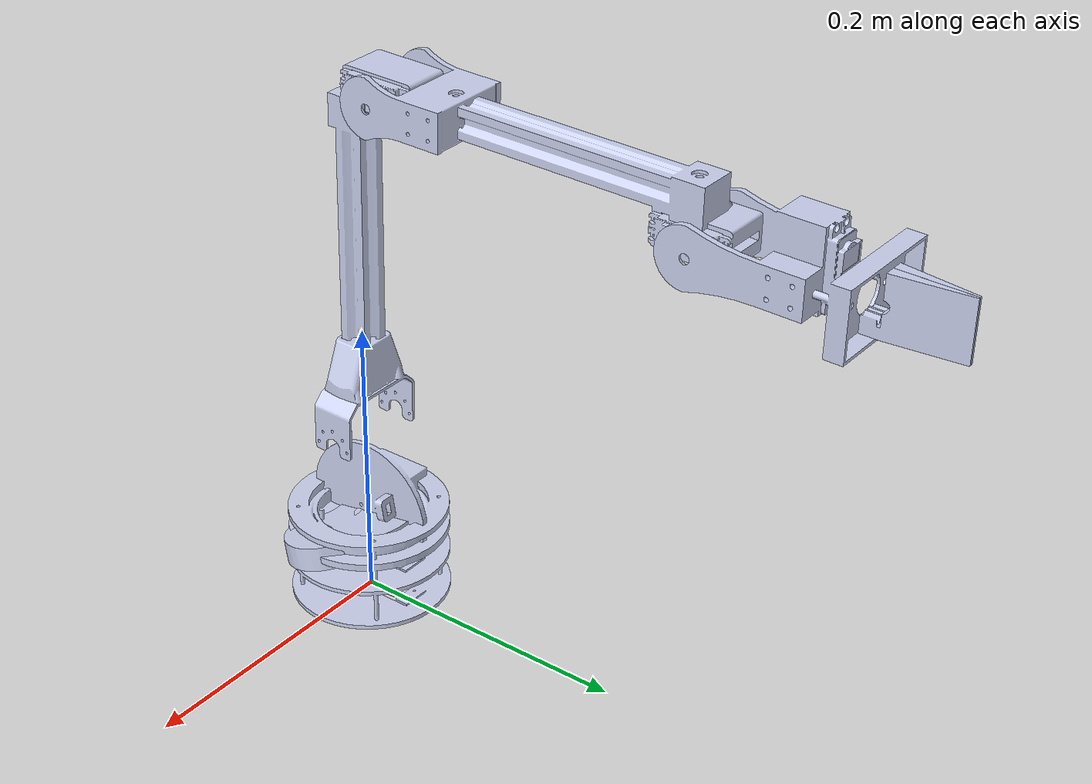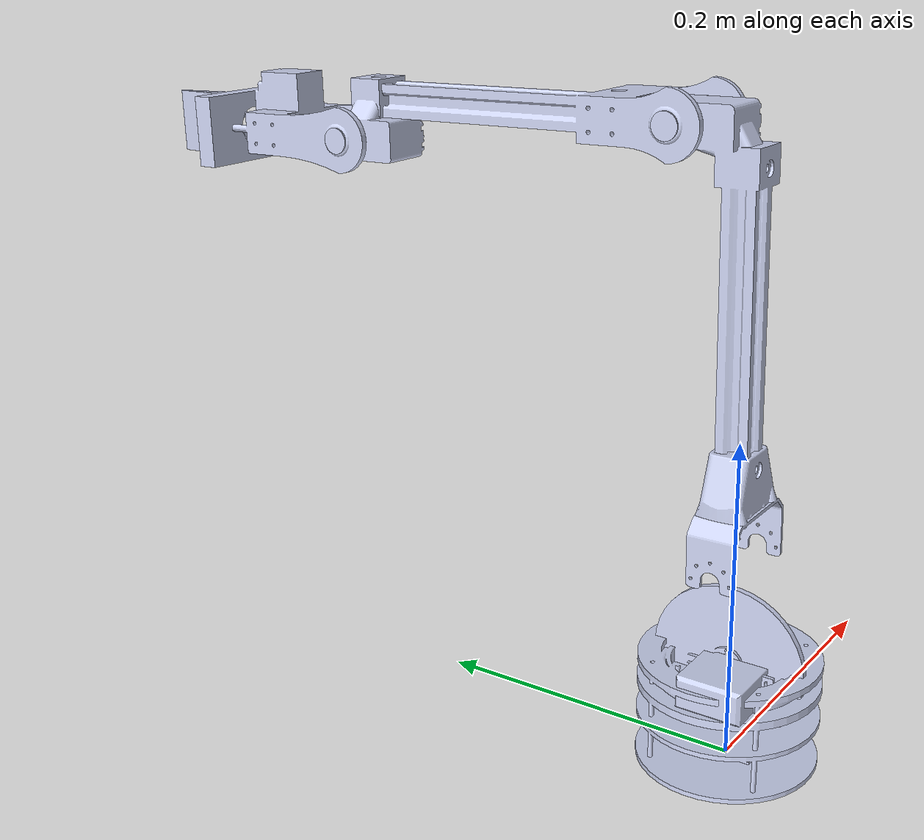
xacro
<?xml version="1.0"?>
<robot xmlns:xacro="http://www.ros.org/wiki/xacro" name="robot_arm_description">
    <xacro:arg name="initial_positions_file" default="initial_positions.yaml" />

    <!-- Import robot_arm_description urdf file -->
    <xacro:include filename="$(find robot_arm_description)/urdf/robot_arm.urdf.xacro" />

    <!-- Import control_xacro -->
    <xacro:include filename="robot_arm_description.ros2_control.xacro" />

    <xacro:robot_arm_description_ros2_control name="FakeSystem" initial_positions_file="$(arg initial_positions_file)"/>

</robot>

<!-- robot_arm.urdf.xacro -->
<robot name="robot_arm_description" xmlns:xacro="http://www.ros.org/wiki/xacro">

    <xacro:arg name="is_ignition" default="True"/>

    <!-- Include the Gazebo plugin configuration -->
    <xacro:include filename="$(find robot_arm_description)/urdf/robot_arm_gazebo.xacro" />
    <xacro:include filename="$(find robot_arm_description)/urdf/robot_arm_control.xacro" />

   <!-- Links -->
  <link name="world"/>

   <!-- Joints -->
  <joint name="virtual_joint" type="fixed">
    <parent link="world"/>
    <child link="base_link"/>
    <origin xyz="0 0 0" rpy="0 0 0"/>
  </joint>

  <!-- Base Link without Inertia -->
  <link name="base_link">
    <inertial>
      <origin xyz="0 0 0" rpy="0 0 0"/>
      <mass value="1.0"/>
      <inertia ixx="0.01" ixy="0.0" ixz="0.0" iyy="0.01" iyz="0.0" izz="0.01"/>
    </inertial>
    <visual>
      <origin xyz="0 0 0" rpy="0 0 0"/>
      <geometry>
        <mesh filename="package://robot_arm_description/meshes/base_link.STL"/>
      </geometry>
      <material name="">
        <color rgba="0.79216 0.81961 0.93333 1"/>
      </material>
    </visual>
    <collision>
      <origin xyz="0 0 0" rpy="0 0 0"/>
      <geometry>
        <mesh filename="package://robot_arm_description/meshes/base_link.STL"/>
      </geometry>
    </collision>
  </link>

  <!-- Joint 1 -->
  <joint name="joint_1" type="revolute">
    <origin xyz="0 0 0.063" rpy="1.5708 0 1.5708"/>
    <parent link="base_link"/>
    <child link="link_1"/>
    <axis xyz="0 1 0"/>
    <limit lower="-1.57" upper="1.57" effort="1.35" velocity="20.12"/>
  </joint>

  <!-- Link 1 -->
  <link name="link_1">
    <inertial>
      <origin xyz="2.6152E-08 0.035089 0.00070571" rpy="0 0 0"/>
      <mass value="0.088226"/>
      <inertia ixx="3.5564E-05" ixy="-7.7325E-09" ixz="3.0407E-12"
               iyy="2.4365E-05" iyz="-3.8251E-08" izz="3.8253E-05"/>
    </inertial>
    <visual>
      <origin xyz="0 0 0" rpy="0 0 0"/>
      <geometry>
        <mesh filename="package://robot_arm_description/meshes/link_1.STL"/>
      </geometry>
      <material name="">
        <color rgba="0.79216 0.81961 0.93333 1"/>
      </material>
    </visual>
    <collision>
      <origin xyz="0 0 0" rpy="0 0 0"/>
      <geometry>
        <mesh filename="package://robot_arm_description/meshes/link_1.STL"/>
      </geometry>
    </collision>
  </link>

  <!-- Joint 2 -->
  <joint name="joint_2" type="revolute">
    <origin xyz="0 0.064 0" rpy="1.5533 1.5708 0"/>
    <parent link="link_1"/>
    <child link="link_2"/>
    <axis xyz="1 0 0"/>
    <limit lower="-1.57" upper="1.57" effort="1.35" velocity="20.12"/>
  </joint>

  <!-- Link 2 -->
  <link name="link_2">
    <inertial>
      <origin xyz="-7.7387E-05 0.015464 -0.15988" rpy="0 0 0"/>
      <mass value="0.12853"/>
      <inertia ixx="0.00013873" ixy="-6.7888E-07" ixz="5.6388E-07"
               iyy="0.00013845" iyz="6.6229E-06" izz="3.5101E-05"/>
    </inertial>
    <visual>
      <origin xyz="0 0 0" rpy="0 0 0"/>
      <geometry>
        <mesh filename="package://robot_arm_description/meshes/link_2.STL"/>
      </geometry>
      <material name="">
        <color rgba="0.79216 0.81961 0.93333 1"/>
      </material>
    </visual>
    <collision>
      <origin xyz="0 0 0" rpy="0 0 0"/>
      <geometry>
        <mesh filename="package://robot_arm_description/meshes/link_2.STL"/>
      </geometry>
    </collision>
  </link>

  <!-- Joint 3 -->
  <joint name="joint_3" type="revolute">
    <origin xyz="0 0.045308 -0.25017" rpy="0.35539 0.63117 0.21561"/>
    <parent link="link_2"/>
    <child link="link_3"/>
    <axis xyz="-0.78864 0 -0.61485"/>
    <limit lower="-1.57" upper="1.57" effort="1.35" velocity="20.12"/>
  </joint>

  <!-- Link 3 -->
  <link name="link_3">
    <inertial>
      <origin xyz="0.012111 0.12658 -0.021361" rpy="0 0 0"/>
      <mass value="0.14257"/>
      <inertia ixx="0.00014411" ixy="-1.8273E-05" ixz="6.0496E-07"
               iyy="3.4503E-05" iyz="2.3073E-05" izz="0.00014132"/>
    </inertial>
    <visual>
      <origin xyz="0 0 0" rpy="0 0 0"/>
      <geometry>
        <mesh filename="package://robot_arm_description/meshes/link_3.STL"/>
      </geometry>
      <material name="">
        <color rgba="0.79216 0.81961 0.93333 1"/>
      </material>
    </visual>
    <collision>
      <origin xyz="0 0 0" rpy="0 0 0"/>
      <geometry>
        <mesh filename="package://robot_arm_description/meshes/link_3.STL"/>
      </geometry>
    </collision>
  </link>

  <!-- Joint 4 -->
  <joint name="joint_4" type="revolute">
    <origin xyz="0.020718 0.22568 -0.026574" rpy="0.35965 -0.050844 0.27795"/>
    <parent link="link_3"/>
    <child link="link_4"/>
    <axis xyz="-0.78864 0 -0.61485"/>
    <limit lower="-1.57" upper="1.57" effort="1.35" velocity="20.12"/>
  </joint>

  <!-- Link 4 -->
  <link name="link_4">
    <inertial>
      <origin xyz="0.021507 0.041633 -0.036882" rpy="0 0 0"/>
      <mass value="0.096051"/>
      <inertia ixx="3.672E-05" ixy="-1.4508E-06" ixz="3.6397E-07"
                iyy="3.5201E-05" iyz="1.899E-06" izz="3.662E-05"/>
    </inertial>
    <visual>
      <origin xyz="0 0 0" rpy="0 0 0"/>
      <geometry>
        <mesh filename="package://robot_arm_description/meshes/link_4.STL"/>
      </geometry>
      <material name="">
        <color rgba="0.79216 0.81961 0.93333 1"/>
      </material>
    </visual>
    <collision>
      <origin xyz="0 0 0" rpy="0 0 0"/>
      <geometry>
        <mesh filename="package://robot_arm_description/meshes/link_4.STL"/>
      </geometry>
    </collision>
  </link>

<!-- ========================= Dummy Link Definition ========================= -->
<link name="dummy_link">
    <inertial>
        <!-- Inertia properties of dummy_link -->
        <origin xyz="0 0.0025 0.000500000000000001" rpy="0 0 0"/>
        <mass value="5.0000000000001E-06"/>
        <inertia
            ixx="1.08333333333334E-11" ixy="-1.39155063680986E-27" ixz="1.10935197335756E-28"
            iyy="8.33333333333374E-13" iyz="6.29916623584742E-27" izz="1.08333333333335E-11"
        />
    </inertial>

    <visual>
        <!-- Visual representation using a mesh file -->
        <origin xyz="0 0 0" rpy="0 0 0"/>
        <geometry>
            <mesh filename="package://robot_arm_description/meshes/dummy_link.STL"/>
        </geometry>
        <material name="">
            <color rgba="0.792156862745098 0.819607843137255 0.933333333333333 1"/>
        </material>
    </visual>

    <collision>
        <!-- Collision properties using the same mesh file -->
        <origin xyz="0 0 0" rpy="0 0 0"/>
        <geometry>
            <mesh filename="package://robot_arm_description/meshes/dummy_link.STL"/>
        </geometry>
    </collision>
</link>
<!-- ===================== End of Dummy Link Definition ===================== -->

<!-- ========================= Dummy Joint Definition ========================= -->
<joint name="dummy_joint" type="fixed">
    <!-- Position and orientation of the joint connecting dummy_link to link_4 -->
    <origin xyz="0.028884 0.095638 -0.045587" rpy="-2.4442 -0.63995 2.19"/>
    <parent link="link_4"/>
    <child link="dummy_link"/>

    <!-- Prismatic joint with movement along the Z-axis -->
    <axis xyz="0 0 1"/>

    <!-- Joint limits (currently locked with lower=upper=0) -->
</joint>
<!-- ===================== End of Dummy Joint Definition ===================== -->

  <!-- Joint 5 -->
  <joint name="joint_5" type="prismatic">
    <origin xyz="-0.21116 0.021122 0.31578" rpy="-2.0002 0.60545 1.964"/>
    <parent link="link_4"/>
    <child link="link_5"/>
    <axis xyz="0.59842 0 0.80119"/>
    <limit lower="-0.03" upper="0" effort="10.0" velocity="20.12"/>
  </joint>

  <!-- Link 5 -->
  <link name="link_5">
    <inertial>
      <origin xyz="0.19371 0.41234 -0.10632" rpy="0 0 0"/>
      <mass value="0.0095399"/>
      <inertia ixx="2.2249E-06" ixy="-3.9768E-07" ixz="7.8333E-07"
               iyy="1.7553E-06" iyz="2.2835E-07" izz="2.8965E-06"/>
    </inertial>
    <visual>
      <origin xyz="0 0 0" rpy="0 0 0"/>
      <geometry>
        <mesh filename="package://robot_arm_description/meshes/link_5.STL"/>
      </geometry>
      <material name="">
        <color rgba="0.79216 0.81961 0.93333 1"/>
      </material>
    </visual>
    <collision>
      <origin xyz="0 0 0" rpy="0 0 0"/>
      <geometry>
        <mesh filename="package://robot_arm_description/meshes/link_5.STL"/>
      </geometry>
    </collision>
  </link>

  <!-- Joint 6 -->
  <joint name="joint_6" type="prismatic">
    <origin xyz="-0.21426 0.021122 0.31336" rpy="-2.281 -0.16752 0.87925"/>
    <parent link="link_4"/>
    <child link="link_6"/>
    <axis xyz="-0.59842 0 0.80119"/>
    <limit lower="0" upper="0.03" effort="10.0" velocity="20.12"/>
    <mimic joint="joint_5" multiplier="-1" offset="0"/>
  </joint>

  <!-- Link 6 -->
  <link name="link_6">
    <inertial>
      <origin xyz="0.15611 0.41234 0.15665" rpy="0 0 0"/>
      <mass value="0.0095399"/>
      <inertia ixx="2.2249E-06" ixy="-3.9768E-07" ixz="-7.8333E-07"
               iyy="1.7553E-06" iyz="-2.2835E-07" izz="2.8965E-06"/>
    </inertial>
    <visual>
      <origin xyz="0 0 0" rpy="0 0 0"/>
      <geometry>
        <mesh filename="package://robot_arm_description/meshes/link_6.STL"/>
      </geometry>
      <material name="">
        <color rgba="0.79216 0.81961 0.93333 1"/>
      </material>
    </visual>
    <collision>
      <origin xyz="0 0 0" rpy="0 0 0"/>
      <geometry>
        <mesh filename="package://robot_arm_description/meshes/link_6.STL"/>
      </geometry>
    </collision>
  </link>

</robot>
